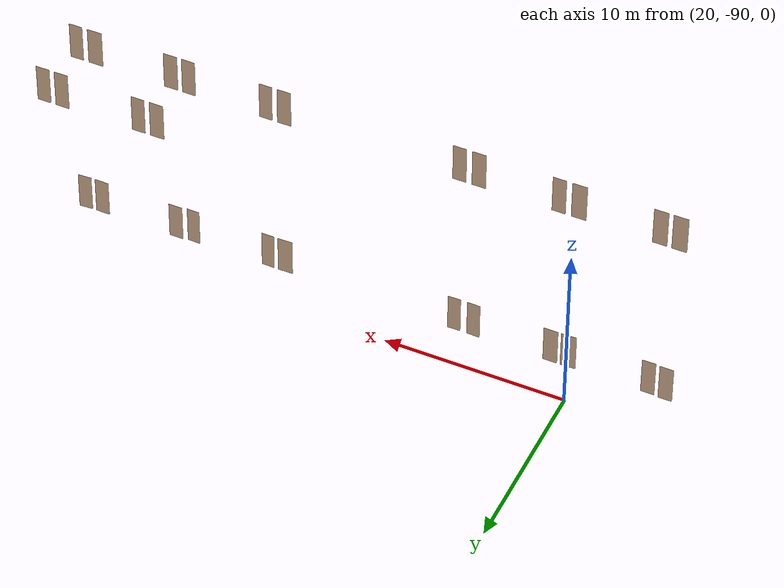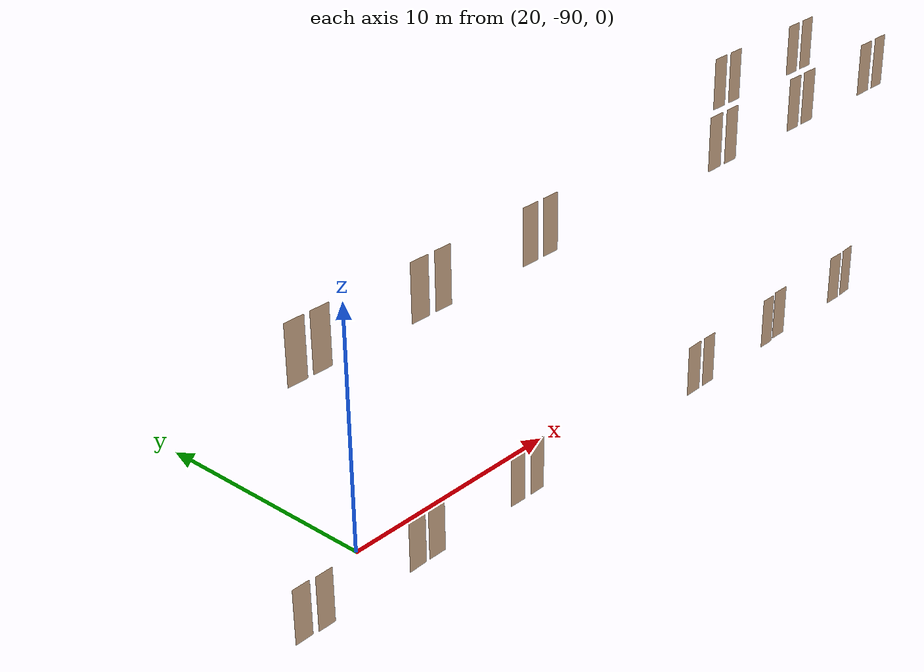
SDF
<sdf version="1.7">
 <world name="sim_world">
  <model name="part3_1">
   <pose>48.504453240539036 -92.27346916209461 0.0 0 0 -3.0840633506619977</pose>
   <link name="right">
    <pose>0 0 1.11 0 0 0</pose>
    <visual name="right_visual">
     <geometry><box><size>0.7421106349888931 0.03 2.2</size></box></geometry>
     <material>
      <ambient>0.5 0.25 0 0.6</ambient>
      <diffuse>0.5 0.25 0 0.6</diffuse>
      <pbr><metal><metalness>0.0</metalness></metal></pbr>
     </material>
    </visual>
    <collision name="right_collision">
     <geometry><box><size>0.7421106349888931 0.03 2.2</size></box></geometry>
     <surface><contact><collide_bitmask>0x02</collide_bitmask></contact></surface>
    </collision>
    <inertial>
     <mass>50.0</mass>
     <inertia><ixx>20.17041666666667</ixx><iyy>22.461367477348414</iyy><izz>2.2984508106817425</izz></inertia>
    </inertial>
   </link>
   <joint name="right_joint" type="revolute">
    <parent>world</parent>
    <child>right</child>
    <axis><xyz>0 0 -1</xyz><limit><lower>0</lower><upper>1.57</upper></limit></axis>
    <pose>0.37605531749444654 0 0 0 0 0</pose>
   </joint>
   <plugin name="register_component" filename="libregister_component.so">
    <component name="Door">
     <v_max_door>0.5</v_max_door>
     <a_max_door>0.3</a_max_door>
     <a_nom_door>0.15</a_nom_door>
     <dx_min_door>0.01</dx_min_door>
     <f_max_door>500.0</f_max_door>
     <ros_interface>true</ros_interface>
     <door name="part3_1" type="SwingDoor" left_joint_name="empty_joint" right_joint_name="right_joint"/>
    </component>
   </plugin>
  </model>
  <model name="part3_4">
   <pose>47.5148352956073 -92.29600606485037 0.0 0 0 3.1241688514080947</pose>
   <link name="right">
    <pose>0 0 1.11 0 0 0</pose>
    <visual name="right_visual">
     <geometry><box><size>0.7802032618314758 0.03 2.2</size></box></geometry>
     <material>
      <ambient>0.5 0.25 0 0.6</ambient>
      <diffuse>0.5 0.25 0 0.6</diffuse>
      <pbr><metal><metalness>0.0</metalness></metal></pbr>
     </material>
    </visual>
    <collision name="right_collision">
     <geometry><box><size>0.7802032618314758 0.03 2.2</size></box></geometry>
     <surface><contact><collide_bitmask>0x02</collide_bitmask></contact></surface>
    </collision>
    <inertial>
     <mass>50.0</mass>
     <inertia><ixx>20.17041666666667</ixx><iyy>22.702988040718648</iyy><izz>2.5400713740519767</izz></inertia>
    </inertial>
   </link>
   <joint name="right_joint" type="revolute">
    <parent>world</parent>
    <child>right</child>
    <axis><xyz>0 0 1</xyz><limit><lower>0</lower><upper>1.57</upper></limit></axis>
    <pose>0.3951016309157379 0 0 0 0 0</pose>
   </joint>
   <plugin name="register_component" filename="libregister_component.so">
    <component name="Door">
     <v_max_door>0.5</v_max_door>
     <a_max_door>0.3</a_max_door>
     <a_nom_door>0.15</a_nom_door>
     <dx_min_door>0.01</dx_min_door>
     <f_max_door>500.0</f_max_door>
     <ros_interface>true</ros_interface>
     <door name="part3_4" type="SwingDoor" left_joint_name="empty_joint" right_joint_name="right_joint"/>
    </component>
   </plugin>
  </model>
  <model name="part3_6">
   <pose>43.162252537892115 -92.28403559175973 0.0 0 0 3.1286053066451407</pose>
   <link name="right">
    <pose>0 0 1.11 0 0 0</pose>
    <visual name="right_visual">
     <geometry><box><size>0.7733457861193949 0.03 2.2</size></box></geometry>
     <material>
      <ambient>0.5 0.25 0 0.6</ambient>
      <diffuse>0.5 0.25 0 0.6</diffuse>
      <pbr><metal><metalness>0.0</metalness></metal></pbr>
     </material>
    </visual>
    <collision name="right_collision">
     <geometry><box><size>0.7733457861193949 0.03 2.2</size></box></geometry>
     <surface><contact><collide_bitmask>0x02</collide_bitmask></contact></surface>
    </collision>
    <inertial>
     <mass>50.0</mass>
     <inertia><ixx>20.17041666666667</ixx><iyy>22.658598770452606</iyy><izz>2.495682103785937</izz></inertia>
    </inertial>
   </link>
   <joint name="right_joint" type="revolute">
    <parent>world</parent>
    <child>right</child>
    <axis><xyz>0 0 -1</xyz><limit><lower>0</lower><upper>1.57</upper></limit></axis>
    <pose>0.39167289305969744 0 0 0 0 0</pose>
   </joint>
   <plugin name="register_component" filename="libregister_component.so">
    <component name="Door">
     <v_max_door>0.5</v_max_door>
     <a_max_door>0.3</a_max_door>
     <a_nom_door>0.15</a_nom_door>
     <dx_min_door>0.01</dx_min_door>
     <f_max_door>500.0</f_max_door>
     <ros_interface>true</ros_interface>
     <door name="part3_6" type="SwingDoor" left_joint_name="empty_joint" right_joint_name="right_joint"/>
    </component>
   </plugin>
  </model>
  <model name="part3_7">
   <pose>42.159821693814436 -92.35573006061897 0.0 0 0 3.121794162050716</pose>
   <link name="right">
    <pose>0 0 1.11 0 0 0</pose>
    <visual name="right_visual">
     <geometry><box><size>0.6951605541301751 0.03 2.2</size></box></geometry>
     <material>
      <ambient>0.5 0.25 0 0.6</ambient>
      <diffuse>0.5 0.25 0 0.6</diffuse>
      <pbr><metal><metalness>0.0</metalness></metal></pbr>
     </material>
    </visual>
    <collision name="right_collision">
     <geometry><box><size>0.6951605541301751 0.03 2.2</size></box></geometry>
     <surface><contact><collide_bitmask>0x02</collide_bitmask></contact></surface>
    </collision>
    <inertial>
     <mass>50.0</mass>
     <inertia><ixx>20.17041666666667</ixx><iyy>22.180200816744055</iyy><izz>2.017284150077384</izz></inertia>
    </inertial>
   </link>
   <joint name="right_joint" type="revolute">
    <parent>world</parent>
    <child>right</child>
    <axis><xyz>0 0 1</xyz><limit><lower>0</lower><upper>1.57</upper></limit></axis>
    <pose>0.35258027706508754 0 0 0 0 0</pose>
   </joint>
   <plugin name="register_component" filename="libregister_component.so">
    <component name="Door">
     <v_max_door>0.5</v_max_door>
     <a_max_door>0.3</a_max_door>
     <a_nom_door>0.15</a_nom_door>
     <dx_min_door>0.01</dx_min_door>
     <f_max_door>500.0</f_max_door>
     <ros_interface>true</ros_interface>
     <door name="part3_7" type="SwingDoor" left_joint_name="empty_joint" right_joint_name="right_joint"/>
    </component>
   </plugin>
  </model>
  <model name="part3_9">
   <pose>37.83918694135859 -92.38632216108452 0.0 0 0 3.137052876759596</pose>
   <link name="right">
    <pose>0 0 1.11 0 0 0</pose>
    <visual name="right_visual">
     <geometry><box><size>0.7004532943656328 0.03 2.2</size></box></geometry>
     <material>
      <ambient>0.5 0.25 0 0.6</ambient>
      <diffuse>0.5 0.25 0 0.6</diffuse>
      <pbr><metal><metalness>0.0</metalness></metal></pbr>
     </material>
    </visual>
    <collision name="right_collision">
     <geometry><box><size>0.7004532943656328 0.03 2.2</size></box></geometry>
     <surface><contact><collide_bitmask>0x02</collide_bitmask></contact></surface>
    </collision>
    <inertial>
     <mass>50.0</mass>
     <inertia><ixx>20.17041666666667</ixx><iyy>22.210978406615286</iyy><izz>2.048061739948616</izz></inertia>
    </inertial>
   </link>
   <joint name="right_joint" type="revolute">
    <parent>world</parent>
    <child>right</child>
    <axis><xyz>0 0 -1</xyz><limit><lower>0</lower><upper>1.57</upper></limit></axis>
    <pose>0.3552266471828164 0 0 0 0 0</pose>
   </joint>
   <plugin name="register_component" filename="libregister_component.so">
    <component name="Door">
     <v_max_door>0.5</v_max_door>
     <a_max_door>0.3</a_max_door>
     <a_nom_door>0.15</a_nom_door>
     <dx_min_door>0.01</dx_min_door>
     <f_max_door>500.0</f_max_door>
     <ros_interface>true</ros_interface>
     <door name="part3_9" type="SwingDoor" left_joint_name="empty_joint" right_joint_name="right_joint"/>
    </component>
   </plugin>
  </model>
  <model name="part3_10_end">
   <pose>36.84664858610179 -92.38692389398116 0.0 0 0 -3.1164861377216235</pose>
   <link name="right">
    <pose>0 0 1.11 0 0 0</pose>
    <visual name="right_visual">
     <geometry><box><size>0.8120015453154469 0.03 2.2</size></box></geometry>
     <material>
      <ambient>0.5 0.25 0 0.6</ambient>
      <diffuse>0.5 0.25 0 0.6</diffuse>
      <pbr><metal><metalness>0.0</metalness></metal></pbr>
     </material>
    </visual>
    <collision name="right_collision">
     <geometry><box><size>0.8120015453154469 0.03 2.2</size></box></geometry>
     <surface><contact><collide_bitmask>0x02</collide_bitmask></contact></surface>
    </collision>
    <inertial>
     <mass>50.0</mass>
     <inertia><ixx>20.17041666666667</ixx><iyy>22.913943789977814</iyy><izz>2.751027123311141</izz></inertia>
    </inertial>
   </link>
   <joint name="right_joint" type="revolute">
    <parent>world</parent>
    <child>right</child>
    <axis><xyz>0 0 1</xyz><limit><lower>0</lower><upper>1.57</upper></limit></axis>
    <pose>0.41100077265772345 0 0 0 0 0</pose>
   </joint>
   <plugin name="register_component" filename="libregister_component.so">
    <component name="Door">
     <v_max_door>0.5</v_max_door>
     <a_max_door>0.3</a_max_door>
     <a_nom_door>0.15</a_nom_door>
     <dx_min_door>0.01</dx_min_door>
     <f_max_door>500.0</f_max_door>
     <ros_interface>true</ros_interface>
     <door name="part3_10_end" type="SwingDoor" left_joint_name="empty_joint" right_joint_name="right_joint"/>
    </component>
   </plugin>
  </model>
  <model name="part4_6">
   <pose>27.17457853681181 -92.28621787639824 0.0 0 0 -3.12595904261172</pose>
   <link name="right">
    <pose>0 0 1.11 0 0 0</pose>
    <visual name="right_visual">
     <geometry><box><size>0.7002920795516806 0.03 2.2</size></box></geometry>
     <material>
      <ambient>0.5 0.25 0 0.6</ambient>
      <diffuse>0.5 0.25 0 0.6</diffuse>
      <pbr><metal><metalness>0.0</metalness></metal></pbr>
     </material>
    </visual>
    <collision name="right_collision">
     <geometry><box><size>0.7002920795516806 0.03 2.2</size></box></geometry>
     <surface><contact><collide_bitmask>0x02</collide_bitmask></contact></surface>
    </collision>
    <inertial>
     <mass>50.0</mass>
     <inertia><ixx>20.17041666666667</ixx><iyy>22.21003748617841</iyy><izz>2.047120819511739</izz></inertia>
    </inertial>
   </link>
   <joint name="right_joint" type="revolute">
    <parent>world</parent>
    <child>right</child>
    <axis><xyz>0 0 -1</xyz><limit><lower>0</lower><upper>1.57</upper></limit></axis>
    <pose>0.3551460397758403 0 0 0 0 0</pose>
   </joint>
   <plugin name="register_component" filename="libregister_component.so">
    <component name="Door">
     <v_max_door>0.5</v_max_door>
     <a_max_door>0.3</a_max_door>
     <a_nom_door>0.15</a_nom_door>
     <dx_min_door>0.01</dx_min_door>
     <f_max_door>500.0</f_max_door>
     <ros_interface>true</ros_interface>
     <door name="part4_6" type="SwingDoor" left_joint_name="empty_joint" right_joint_name="right_joint"/>
    </component>
   </plugin>
  </model>
  <model name="part4_5">
   <pose>26.091162467950667 -92.28202981543757 0.0 0 0 3.1147662105068084</pose>
   <link name="right">
    <pose>0 0 1.11 0 0 0</pose>
    <visual name="right_visual">
     <geometry><box><size>0.7162400117105202 0.03 2.2</size></box></geometry>
     <material>
      <ambient>0.5 0.25 0 0.6</ambient>
      <diffuse>0.5 0.25 0 0.6</diffuse>
      <pbr><metal><metalness>0.0</metalness></metal></pbr>
     </material>
    </visual>
    <collision name="right_collision">
     <geometry><box><size>0.7162400117105202 0.03 2.2</size></box></geometry>
     <surface><contact><collide_bitmask>0x02</collide_bitmask></contact></surface>
    </collision>
    <inertial>
     <mass>50.0</mass>
     <inertia><ixx>20.17041666666667</ixx><iyy>22.30416564322953</iyy><izz>2.141248976562859</izz></inertia>
    </inertial>
   </link>
   <joint name="right_joint" type="revolute">
    <parent>world</parent>
    <child>right</child>
    <axis><xyz>0 0 1</xyz><limit><lower>0</lower><upper>1.57</upper></limit></axis>
    <pose>0.3631200058552601 0 0 0 0 0</pose>
   </joint>
   <plugin name="register_component" filename="libregister_component.so">
    <component name="Door">
     <v_max_door>0.5</v_max_door>
     <a_max_door>0.3</a_max_door>
     <a_nom_door>0.15</a_nom_door>
     <dx_min_door>0.01</dx_min_door>
     <f_max_door>500.0</f_max_door>
     <ros_interface>true</ros_interface>
     <door name="part4_5" type="SwingDoor" left_joint_name="empty_joint" right_joint_name="right_joint"/>
    </component>
   </plugin>
  </model>
  <model name="part4_4">
   <pose>21.79289613303953 -92.27025189687387 0.0 0 0 3.1364429718043936</pose>
   <link name="right">
    <pose>0 0 1.11 0 0 0</pose>
    <visual name="right_visual">
     <geometry><box><size>0.7814577387012437 0.03 2.2</size></box></geometry>
     <material>
      <ambient>0.5 0.25 0 0.6</ambient>
      <diffuse>0.5 0.25 0 0.6</diffuse>
      <pbr><metal><metalness>0.0</metalness></metal></pbr>
     </material>
    </visual>
    <collision name="right_collision">
     <geometry><box><size>0.7814577387012437 0.03 2.2</size></box></geometry>
     <surface><contact><collide_bitmask>0x02</collide_bitmask></contact></surface>
    </collision>
    <inertial>
     <mass>50.0</mass>
     <inertia><ixx>20.17041666666667</ixx><iyy>22.71115082240026</iyy><izz>2.548234155733589</izz></inertia>
    </inertial>
   </link>
   <joint name="right_joint" type="revolute">
    <parent>world</parent>
    <child>right</child>
    <axis><xyz>0 0 -1</xyz><limit><lower>0</lower><upper>1.57</upper></limit></axis>
    <pose>0.39572886935062185 0 0 0 0 0</pose>
   </joint>
   <plugin name="register_component" filename="libregister_component.so">
    <component name="Door">
     <v_max_door>0.5</v_max_door>
     <a_max_door>0.3</a_max_door>
     <a_nom_door>0.15</a_nom_door>
     <dx_min_door>0.01</dx_min_door>
     <f_max_door>500.0</f_max_door>
     <ros_interface>true</ros_interface>
     <door name="part4_4" type="SwingDoor" left_joint_name="empty_joint" right_joint_name="right_joint"/>
    </component>
   </plugin>
  </model>
  <model name="part4_2">
   <pose>16.429426178272443 -92.29821241880475 0.0 0 0 -3.135646432111975</pose>
   <link name="right">
    <pose>0 0 1.11 0 0 0</pose>
    <visual name="right_visual">
     <geometry><box><size>0.7429015106224636 0.03 2.2</size></box></geometry>
     <material>
      <ambient>0.5 0.25 0 0.6</ambient>
      <diffuse>0.5 0.25 0 0.6</diffuse>
      <pbr><metal><metalness>0.0</metalness></metal></pbr>
     </material>
    </visual>
    <collision name="right_collision">
     <geometry><box><size>0.7429015106224636 0.03 2.2</size></box></geometry>
     <surface><contact><collide_bitmask>0x02</collide_bitmask></contact></surface>
    </collision>
    <inertial>
     <mass>50.0</mass>
     <inertia><ixx>20.17041666666667</ixx><iyy>22.466261060354746</iyy><izz>2.3033443936880764</izz></inertia>
    </inertial>
   </link>
   <joint name="right_joint" type="revolute">
    <parent>world</parent>
    <child>right</child>
    <axis><xyz>0 0 -1</xyz><limit><lower>0</lower><upper>1.57</upper></limit></axis>
    <pose>0.3764507553112318 0 0 0 0 0</pose>
   </joint>
   <plugin name="register_component" filename="libregister_component.so">
    <component name="Door">
     <v_max_door>0.5</v_max_door>
     <a_max_door>0.3</a_max_door>
     <a_nom_door>0.15</a_nom_door>
     <dx_min_door>0.01</dx_min_door>
     <f_max_door>500.0</f_max_door>
     <ros_interface>true</ros_interface>
     <door name="part4_2" type="SwingDoor" left_joint_name="empty_joint" right_joint_name="right_joint"/>
    </component>
   </plugin>
  </model>
  <model name="part4_1">
   <pose>15.451168950429413 -92.25228014102731 0.0 0 0 -3.133526279514801</pose>
   <link name="right">
    <pose>0 0 1.11 0 0 0</pose>
    <visual name="right_visual">
     <geometry><box><size>0.7538886599244344 0.03 2.2</size></box></geometry>
     <material>
      <ambient>0.5 0.25 0 0.6</ambient>
      <diffuse>0.5 0.25 0 0.6</diffuse>
      <pbr><metal><metalness>0.0</metalness></metal></pbr>
     </material>
    </visual>
    <collision name="right_collision">
     <geometry><box><size>0.7538886599244344 0.03 2.2</size></box></geometry>
     <surface><contact><collide_bitmask>0x02</collide_bitmask></contact></surface>
    </collision>
    <inertial>
     <mass>50.0</mass>
     <inertia><ixx>20.17041666666667</ixx><iyy>22.534783798177752</iyy><izz>2.3718671315110815</izz></inertia>
    </inertial>
   </link>
   <joint name="right_joint" type="revolute">
    <parent>world</parent>
    <child>right</child>
    <axis><xyz>0 0 1</xyz><limit><lower>0</lower><upper>1.57</upper></limit></axis>
    <pose>0.3819443299622172 0 0 0 0 0</pose>
   </joint>
   <plugin name="register_component" filename="libregister_component.so">
    <component name="Door">
     <v_max_door>0.5</v_max_door>
     <a_max_door>0.3</a_max_door>
     <a_nom_door>0.15</a_nom_door>
     <dx_min_door>0.01</dx_min_door>
     <f_max_door>500.0</f_max_door>
     <ros_interface>true</ros_interface>
     <door name="part4_1" type="SwingDoor" left_joint_name="empty_joint" right_joint_name="right_joint"/>
    </component>
   </plugin>
  </model>
  <model name="part4_3">
   <pose>20.81063537565747 -92.2820940002799 0.0 0 0 -3.1083344110460236</pose>
   <link name="right">
    <pose>0 0 1.11 0 0 0</pose>
    <visual name="right_visual">
     <geometry><box><size>0.8248325236321878 0.03 2.2</size></box></geometry>
     <material>
      <ambient>0.5 0.25 0 0.6</ambient>
      <diffuse>0.5 0.25 0 0.6</diffuse>
      <pbr><metal><metalness>0.0</metalness></metal></pbr>
     </material>
    </visual>
    <collision name="right_collision">
     <geometry><box><size>0.8248325236321878 0.03 2.2</size></box></geometry>
     <surface><contact><collide_bitmask>0x02</collide_bitmask></contact></surface>
    </collision>
    <inertial>
     <mass>50.0</mass>
     <inertia><ixx>20.17041666666667</ixx><iyy>23.001452883506023</iyy><izz>2.838536216839349</izz></inertia>
    </inertial>
   </link>
   <joint name="right_joint" type="revolute">
    <parent>world</parent>
    <child>right</child>
    <axis><xyz>0 0 1</xyz><limit><lower>0</lower><upper>1.57</upper></limit></axis>
    <pose>0.4174162618160939 0 0 0 0 0</pose>
   </joint>
   <plugin name="register_component" filename="libregister_component.so">
    <component name="Door">
     <v_max_door>0.5</v_max_door>
     <a_max_door>0.3</a_max_door>
     <a_nom_door>0.15</a_nom_door>
     <dx_min_door>0.01</dx_min_door>
     <f_max_door>500.0</f_max_door>
     <ros_interface>true</ros_interface>
     <door name="part4_3" type="SwingDoor" left_joint_name="empty_joint" right_joint_name="right_joint"/>
    </component>
   </plugin>
  </model>
  <model name="L3_part1_7">
   <pose>42.326793936923764 -89.17011710650151 10.0 0 0 -3.1397482828974224</pose>
   <link name="right">
    <pose>0 0 1.11 0 0 0</pose>
    <visual name="right_visual">
     <geometry><box><size>0.7638350684312938 0.03 2.2</size></box></geometry>
     <material>
      <ambient>0.5 0.25 0 0.6</ambient>
      <diffuse>0.5 0.25 0 0.6</diffuse>
      <pbr><metal><metalness>0.0</metalness></metal></pbr>
     </material>
    </visual>
    <collision name="right_collision">
     <geometry><box><size>0.7638350684312938 0.03 2.2</size></box></geometry>
     <surface><contact><collide_bitmask>0x02</collide_bitmask></contact></surface>
    </collision>
    <inertial>
     <mass>50.0</mass>
     <inertia><ixx>20.17041666666667</ixx><iyy>22.597683382356003</iyy><izz>2.4347667156893302</izz></inertia>
    </inertial>
   </link>
   <joint name="right_joint" type="revolute">
    <parent>world</parent>
    <child>right</child>
    <axis><xyz>0 0 -1</xyz><limit><lower>0</lower><upper>1.57</upper></limit></axis>
    <pose>0.3869175342156469 0 0 0 0 0</pose>
   </joint>
   <plugin name="register_component" filename="libregister_component.so">
    <component name="Door">
     <v_max_door>0.5</v_max_door>
     <a_max_door>0.3</a_max_door>
     <a_nom_door>0.15</a_nom_door>
     <dx_min_door>0.01</dx_min_door>
     <f_max_door>500.0</f_max_door>
     <ros_interface>true</ros_interface>
     <door name="L3_part1_7" type="SwingDoor" left_joint_name="empty_joint" right_joint_name="right_joint"/>
    </component>
   </plugin>
  </model>
  <model name="L3_part1_5">
   <pose>43.369855059397736 -89.16819331295545 10.0 0 0 -3.1397482828974304</pose>
   <link name="right">
    <pose>0 0 1.11 0 0 0</pose>
    <visual name="right_visual">
     <geometry><box><size>0.7266494846776324 0.03 2.2</size></box></geometry>
     <material>
      <ambient>0.5 0.25 0 0.6</ambient>
      <diffuse>0.5 0.25 0 0.6</diffuse>
      <pbr><metal><metalness>0.0</metalness></metal></pbr>
     </material>
    </visual>
    <collision name="right_collision">
     <geometry><box><size>0.7266494846776324 0.03 2.2</size></box></geometry>
     <surface><contact><collide_bitmask>0x02</collide_bitmask></contact></surface>
    </collision>
    <inertial>
     <mass>50.0</mass>
     <inertia><ixx>20.17041666666667</ixx><iyy>22.36674780659279</iyy><izz>2.2038311399261197</izz></inertia>
    </inertial>
   </link>
   <joint name="right_joint" type="revolute">
    <parent>world</parent>
    <child>right</child>
    <axis><xyz>0 0 1</xyz><limit><lower>0</lower><upper>1.57</upper></limit></axis>
    <pose>0.3683247423388162 0 0 0 0 0</pose>
   </joint>
   <plugin name="register_component" filename="libregister_component.so">
    <component name="Door">
     <v_max_door>0.5</v_max_door>
     <a_max_door>0.3</a_max_door>
     <a_nom_door>0.15</a_nom_door>
     <dx_min_door>0.01</dx_min_door>
     <f_max_door>500.0</f_max_door>
     <ros_interface>true</ros_interface>
     <door name="L3_part1_5" type="SwingDoor" left_joint_name="empty_joint" right_joint_name="right_joint"/>
    </component>
   </plugin>
  </model>
  <model name="L3_part1_3">
   <pose>47.7197852502798 -89.16017042010034 10.0 0 0 -3.1397482828974237</pose>
   <link name="right">
    <pose>0 0 1.11 0 0 0</pose>
    <visual name="right_visual">
     <geometry><box><size>0.7544780701725442 0.03 2.2</size></box></geometry>
     <material>
      <ambient>0.5 0.25 0 0.6</ambient>
      <diffuse>0.5 0.25 0 0.6</diffuse>
      <pbr><metal><metalness>0.0</metalness></metal></pbr>
     </material>
    </visual>
    <collision name="right_collision">
     <geometry><box><size>0.7544780701725442 0.03 2.2</size></box></geometry>
     <surface><contact><collide_bitmask>0x02</collide_bitmask></contact></surface>
    </collision>
    <inertial>
     <mass>50.0</mass>
     <inertia><ixx>20.17041666666667</ixx><iyy>22.538488159880362</iyy><izz>2.375571493213694</izz></inertia>
    </inertial>
   </link>
   <joint name="right_joint" type="revolute">
    <parent>world</parent>
    <child>right</child>
    <axis><xyz>0 0 -1</xyz><limit><lower>0</lower><upper>1.57</upper></limit></axis>
    <pose>0.3822390350862721 0 0 0 0 0</pose>
   </joint>
   <plugin name="register_component" filename="libregister_component.so">
    <component name="Door">
     <v_max_door>0.5</v_max_door>
     <a_max_door>0.3</a_max_door>
     <a_nom_door>0.15</a_nom_door>
     <dx_min_door>0.01</dx_min_door>
     <f_max_door>500.0</f_max_door>
     <ros_interface>true</ros_interface>
     <door name="L3_part1_3" type="SwingDoor" left_joint_name="empty_joint" right_joint_name="right_joint"/>
    </component>
   </plugin>
  </model>
  <model name="L3_part1_2">
   <pose>48.75341666774919 -89.15826401844558 10.0 0 0 -3.1397482828974046</pose>
   <link name="right">
    <pose>0 0 1.11 0 0 0</pose>
    <visual name="right_visual">
     <geometry><box><size>0.7430363520944957 0.03 2.2</size></box></geometry>
     <material>
      <ambient>0.5 0.25 0 0.6</ambient>
      <diffuse>0.5 0.25 0 0.6</diffuse>
      <pbr><metal><metalness>0.0</metalness></metal></pbr>
     </material>
    </visual>
    <collision name="right_collision">
     <geometry><box><size>0.7430363520944957 0.03 2.2</size></box></geometry>
     <surface><contact><collide_bitmask>0x02</collide_bitmask></contact></surface>
    </collision>
    <inertial>
     <mass>50.0</mass>
     <inertia><ixx>20.17041666666667</ixx><iyy>22.467095918891236</iyy><izz>2.3041792522245643</izz></inertia>
    </inertial>
   </link>
   <joint name="right_joint" type="revolute">
    <parent>world</parent>
    <child>right</child>
    <axis><xyz>0 0 1</xyz><limit><lower>0</lower><upper>1.57</upper></limit></axis>
    <pose>0.37651817604724785 0 0 0 0 0</pose>
   </joint>
   <plugin name="register_component" filename="libregister_component.so">
    <component name="Door">
     <v_max_door>0.5</v_max_door>
     <a_max_door>0.3</a_max_door>
     <a_nom_door>0.15</a_nom_door>
     <dx_min_door>0.01</dx_min_door>
     <f_max_door>500.0</f_max_door>
     <ros_interface>true</ros_interface>
     <door name="L3_part1_2" type="SwingDoor" left_joint_name="empty_joint" right_joint_name="right_joint"/>
    </component>
   </plugin>
  </model>
  <model name="L3_part1_1">
   <pose>48.78427791606832 -92.75209241313986 10.0 0 0 -3.1397482828974086</pose>
   <link name="right">
    <pose>0 0 1.11 0 0 0</pose>
    <visual name="right_visual">
     <geometry><box><size>0.7333238202231596 0.03 2.2</size></box></geometry>
     <material>
      <ambient>0.5 0.25 0 0.6</ambient>
      <diffuse>0.5 0.25 0 0.6</diffuse>
      <pbr><metal><metalness>0.0</metalness></metal></pbr>
     </material>
    </visual>
    <collision name="right_collision">
     <geometry><box><size>0.7333238202231596 0.03 2.2</size></box></geometry>
     <surface><contact><collide_bitmask>0x02</collide_bitmask></contact></surface>
    </collision>
    <inertial>
     <mass>50.0</mass>
     <inertia><ixx>20.17041666666667</ixx><iyy>22.407349272111208</iyy><izz>2.2444326054445374</izz></inertia>
    </inertial>
   </link>
   <joint name="right_joint" type="revolute">
    <parent>world</parent>
    <child>right</child>
    <axis><xyz>0 0 -1</xyz><limit><lower>0</lower><upper>1.57</upper></limit></axis>
    <pose>0.3716619101115798 0 0 0 0 0</pose>
   </joint>
   <plugin name="register_component" filename="libregister_component.so">
    <component name="Door">
     <v_max_door>0.5</v_max_door>
     <a_max_door>0.3</a_max_door>
     <a_nom_door>0.15</a_nom_door>
     <dx_min_door>0.01</dx_min_door>
     <f_max_door>500.0</f_max_door>
     <ros_interface>true</ros_interface>
     <door name="L3_part1_1" type="SwingDoor" left_joint_name="empty_joint" right_joint_name="right_joint"/>
    </component>
   </plugin>
  </model>
  <model name="L3_part1_4">
   <pose>47.70147789966756 -92.75408950002031 10.0 0 0 -3.139748282897409</pose>
   <link name="right">
    <pose>0 0 1.11 0 0 0</pose>
    <visual name="right_visual">
     <geometry><box><size>0.8111371995251554 0.03 2.2</size></box></geometry>
     <material>
      <ambient>0.5 0.25 0 0.6</ambient>
      <diffuse>0.5 0.25 0 0.6</diffuse>
      <pbr><metal><metalness>0.0</metalness></metal></pbr>
     </material>
    </visual>
    <collision name="right_collision">
     <geometry><box><size>0.8111371995251554 0.03 2.2</size></box></geometry>
     <surface><contact><collide_bitmask>0x02</collide_bitmask></contact></surface>
    </collision>
    <inertial>
     <mass>50.0</mass>
     <inertia><ixx>20.17041666666667</ixx><iyy>22.90809815188964</iyy><izz>2.745181485222966</izz></inertia>
    </inertial>
   </link>
   <joint name="right_joint" type="revolute">
    <parent>world</parent>
    <child>right</child>
    <axis><xyz>0 0 1</xyz><limit><lower>0</lower><upper>1.57</upper></limit></axis>
    <pose>0.4105685997625777 0 0 0 0 0</pose>
   </joint>
   <plugin name="register_component" filename="libregister_component.so">
    <component name="Door">
     <v_max_door>0.5</v_max_door>
     <a_max_door>0.3</a_max_door>
     <a_nom_door>0.15</a_nom_door>
     <dx_min_door>0.01</dx_min_door>
     <f_max_door>500.0</f_max_door>
     <ros_interface>true</ros_interface>
     <door name="L3_part1_4" type="SwingDoor" left_joint_name="empty_joint" right_joint_name="right_joint"/>
    </component>
   </plugin>
  </model>
  <model name="L3_part1_8">
   <pose>42.35903691579627 -92.76394295276957 10.0 0 0 -3.1397482828974286</pose>
   <link name="right">
    <pose>0 0 1.11 0 0 0</pose>
    <visual name="right_visual">
     <geometry><box><size>0.7378487934743584 0.03 2.2</size></box></geometry>
     <material>
      <ambient>0.5 0.25 0 0.6</ambient>
      <diffuse>0.5 0.25 0 0.6</diffuse>
      <pbr><metal><metalness>0.0</metalness></metal></pbr>
     </material>
    </visual>
    <collision name="right_collision">
     <geometry><box><size>0.7378487934743584 0.03 2.2</size></box></geometry>
     <surface><contact><collide_bitmask>0x02</collide_bitmask></contact></surface>
    </collision>
    <inertial>
     <mass>50.0</mass>
     <inertia><ixx>20.17041666666667</ixx><iyy>22.435086841798196</iyy><izz>2.2721701751315266</izz></inertia>
    </inertial>
   </link>
   <joint name="right_joint" type="revolute">
    <parent>world</parent>
    <child>right</child>
    <axis><xyz>0 0 1</xyz><limit><lower>0</lower><upper>1.57</upper></limit></axis>
    <pose>0.3739243967371792 0 0 0 0 0</pose>
   </joint>
   <plugin name="register_component" filename="libregister_component.so">
    <component name="Door">
     <v_max_door>0.5</v_max_door>
     <a_max_door>0.3</a_max_door>
     <a_nom_door>0.15</a_nom_door>
     <dx_min_door>0.01</dx_min_door>
     <f_max_door>500.0</f_max_door>
     <ros_interface>true</ros_interface>
     <door name="L3_part1_8" type="SwingDoor" left_joint_name="empty_joint" right_joint_name="right_joint"/>
    </component>
   </plugin>
  </model>
  <model name="L3_part1_6">
   <pose>43.37770362575195 -92.76206415161406 10.0 0 0 -3.139748282897425</pose>
   <link name="right">
    <pose>0 0 1.11 0 0 0</pose>
    <visual name="right_visual">
     <geometry><box><size>0.7685539691075521 0.03 2.2</size></box></geometry>
     <material>
      <ambient>0.5 0.25 0 0.6</ambient>
      <diffuse>0.5 0.25 0 0.6</diffuse>
      <pbr><metal><metalness>0.0</metalness></metal></pbr>
     </material>
    </visual>
    <collision name="right_collision">
     <geometry><box><size>0.7685539691075521 0.03 2.2</size></box></geometry>
     <surface><contact><collide_bitmask>0x02</collide_bitmask></contact></surface>
    </collision>
    <inertial>
     <mass>50.0</mass>
     <inertia><ixx>20.17041666666667</ixx><iyy>22.627813347629058</iyy><izz>2.4648966809623847</izz></inertia>
    </inertial>
   </link>
   <joint name="right_joint" type="revolute">
    <parent>world</parent>
    <child>right</child>
    <axis><xyz>0 0 -1</xyz><limit><lower>0</lower><upper>1.57</upper></limit></axis>
    <pose>0.3892769845537761 0 0 0 0 0</pose>
   </joint>
   <plugin name="register_component" filename="libregister_component.so">
    <component name="Door">
     <v_max_door>0.5</v_max_door>
     <a_max_door>0.3</a_max_door>
     <a_nom_door>0.15</a_nom_door>
     <dx_min_door>0.01</dx_min_door>
     <f_max_door>500.0</f_max_door>
     <ros_interface>true</ros_interface>
     <door name="L3_part1_6" type="SwingDoor" left_joint_name="empty_joint" right_joint_name="right_joint"/>
    </component>
   </plugin>
  </model>
  <model name="L3_part1_9">
   <pose>38.0023758386513 -92.77197825988812 10.0 0 0 -3.1397482828974024</pose>
   <link name="right">
    <pose>0 0 1.11 0 0 0</pose>
    <visual name="right_visual">
     <geometry><box><size>0.7055760378220147 0.03 2.2</size></box></geometry>
     <material>
      <ambient>0.5 0.25 0 0.6</ambient>
      <diffuse>0.5 0.25 0 0.6</diffuse>
      <pbr><metal><metalness>0.0</metalness></metal></pbr>
     </material>
    </visual>
    <collision name="right_collision">
     <geometry><box><size>0.7055760378220147 0.03 2.2</size></box></geometry>
     <surface><contact><collide_bitmask>0x02</collide_bitmask></contact></surface>
    </collision>
    <inertial>
     <mass>50.0</mass>
     <inertia><ixx>20.17041666666667</ixx><iyy>22.240989771452558</iyy><izz>2.0780731047858882</izz></inertia>
    </inertial>
   </link>
   <joint name="right_joint" type="revolute">
    <parent>world</parent>
    <child>right</child>
    <axis><xyz>0 0 -1</xyz><limit><lower>0</lower><upper>1.57</upper></limit></axis>
    <pose>0.35778801891100737 0 0 0 0 0</pose>
   </joint>
   <plugin name="register_component" filename="libregister_component.so">
    <component name="Door">
     <v_max_door>0.5</v_max_door>
     <a_max_door>0.3</a_max_door>
     <a_nom_door>0.15</a_nom_door>
     <dx_min_door>0.01</dx_min_door>
     <f_max_door>500.0</f_max_door>
     <ros_interface>true</ros_interface>
     <door name="L3_part1_9" type="SwingDoor" left_joint_name="empty_joint" right_joint_name="right_joint"/>
    </component>
   </plugin>
  </model>
  <model name="L3_part1_10">
   <pose>36.972130065052454 -92.77387841715348 10.0 0 0 -3.1397482828974286</pose>
   <link name="right">
    <pose>0 0 1.11 0 0 0</pose>
    <visual name="right_visual">
     <geometry><box><size>0.7543649458412731 0.03 2.2</size></box></geometry>
     <material>
      <ambient>0.5 0.25 0 0.6</ambient>
      <diffuse>0.5 0.25 0 0.6</diffuse>
      <pbr><metal><metalness>0.0</metalness></metal></pbr>
     </material>
    </visual>
    <collision name="right_collision">
     <geometry><box><size>0.7543649458412731 0.03 2.2</size></box></geometry>
     <surface><contact><collide_bitmask>0x02</collide_bitmask></contact></surface>
    </collision>
    <inertial>
     <mass>50.0</mass>
     <inertia><ixx>20.17041666666667</ixx><iyy>22.537776964642116</iyy><izz>2.3748602979754456</izz></inertia>
    </inertial>
   </link>
   <joint name="right_joint" type="revolute">
    <parent>world</parent>
    <child>right</child>
    <axis><xyz>0 0 1</xyz><limit><lower>0</lower><upper>1.57</upper></limit></axis>
    <pose>0.38218247292063656 0 0 0 0 0</pose>
   </joint>
   <plugin name="register_component" filename="libregister_component.so">
    <component name="Door">
     <v_max_door>0.5</v_max_door>
     <a_max_door>0.3</a_max_door>
     <a_nom_door>0.15</a_nom_door>
     <dx_min_door>0.01</dx_min_door>
     <f_max_door>500.0</f_max_door>
     <ros_interface>true</ros_interface>
     <door name="L3_part1_10" type="SwingDoor" left_joint_name="empty_joint" right_joint_name="right_joint"/>
    </component>
   </plugin>
  </model>
  <model name="L3_part1_18_end">
   <pose>15.45078665303226 -92.79539107019028 10.0 0 0 -3.1397482828974166</pose>
   <link name="right">
    <pose>0 0 1.11 0 0 0</pose>
    <visual name="right_visual">
     <geometry><box><size>0.8012145796100094 0.03 2.2</size></box></geometry>
     <material>
      <ambient>0.5 0.25 0 0.6</ambient>
      <diffuse>0.5 0.25 0 0.6</diffuse>
      <pbr><metal><metalness>0.0</metalness></metal></pbr>
     </material>
    </visual>
    <collision name="right_collision">
     <geometry><box><size>0.8012145796100094 0.03 2.2</size></box></geometry>
     <surface><contact><collide_bitmask>0x02</collide_bitmask></contact></surface>
    </collision>
    <inertial>
     <mass>50.0</mass>
     <inertia><ixx>20.17041666666667</ixx><iyy>22.84143667741519</iyy><izz>2.6785200107485174</izz></inertia>
    </inertial>
   </link>
   <joint name="right_joint" type="revolute">
    <parent>world</parent>
    <child>right</child>
    <axis><xyz>0 0 1</xyz><limit><lower>0</lower><upper>1.57</upper></limit></axis>
    <pose>0.4056072898050047 0 0 0 0 0</pose>
   </joint>
   <plugin name="register_component" filename="libregister_component.so">
    <component name="Door">
     <v_max_door>0.5</v_max_door>
     <a_max_door>0.3</a_max_door>
     <a_nom_door>0.15</a_nom_door>
     <dx_min_door>0.01</dx_min_door>
     <f_max_door>500.0</f_max_door>
     <ros_interface>true</ros_interface>
     <door name="L3_part1_18_end" type="SwingDoor" left_joint_name="empty_joint" right_joint_name="right_joint"/>
    </component>
   </plugin>
  </model>
  <model name="L3_part1_17">
   <pose>16.48733505722543 -92.79347928852457 10.0 0 0 -3.139748282897414</pose>
   <link name="right">
    <pose>0 0 1.11 0 0 0</pose>
    <visual name="right_visual">
     <geometry><box><size>0.7711719893457524 0.03 2.2</size></box></geometry>
     <material>
      <ambient>0.5 0.25 0 0.6</ambient>
      <diffuse>0.5 0.25 0 0.6</diffuse>
      <pbr><metal><metalness>0.0</metalness></metal></pbr>
     </material>
    </visual>
    <collision name="right_collision">
     <geometry><box><size>0.7711719893457524 0.03 2.2</size></box></geometry>
     <surface><contact><collide_bitmask>0x02</collide_bitmask></contact></surface>
    </collision>
    <inertial>
     <mass>50.0</mass>
     <inertia><ixx>20.17041666666667</ixx><iyy>22.64460932146453</iyy><izz>2.4816926547978553</izz></inertia>
    </inertial>
   </link>
   <joint name="right_joint" type="revolute">
    <parent>world</parent>
    <child>right</child>
    <axis><xyz>0 0 -1</xyz><limit><lower>0</lower><upper>1.57</upper></limit></axis>
    <pose>0.3905859946728762 0 0 0 0 0</pose>
   </joint>
   <plugin name="register_component" filename="libregister_component.so">
    <component name="Door">
     <v_max_door>0.5</v_max_door>
     <a_max_door>0.3</a_max_door>
     <a_nom_door>0.15</a_nom_door>
     <dx_min_door>0.01</dx_min_door>
     <f_max_door>500.0</f_max_door>
     <ros_interface>true</ros_interface>
     <door name="L3_part1_17" type="SwingDoor" left_joint_name="empty_joint" right_joint_name="right_joint"/>
    </component>
   </plugin>
  </model>
  <model name="L3_part1_16">
   <pose>20.805727854248964 -92.78551456238037 10.0 0 0 -3.1397482828974126</pose>
   <link name="right">
    <pose>0 0 1.11 0 0 0</pose>
    <visual name="right_visual">
     <geometry><box><size>0.7982410257592173 0.03 2.2</size></box></geometry>
     <material>
      <ambient>0.5 0.25 0 0.6</ambient>
      <diffuse>0.5 0.25 0 0.6</diffuse>
      <pbr><metal><metalness>0.0</metalness></metal></pbr>
     </material>
    </visual>
    <collision name="right_collision">
     <geometry><box><size>0.7982410257592173 0.03 2.2</size></box></geometry>
     <surface><contact><collide_bitmask>0x02</collide_bitmask></contact></surface>
    </collision>
    <inertial>
     <mass>50.0</mass>
     <inertia><ixx>20.17041666666667</ixx><iyy>22.821619730021368</iyy><izz>2.658703063354698</izz></inertia>
    </inertial>
   </link>
   <joint name="right_joint" type="revolute">
    <parent>world</parent>
    <child>right</child>
    <axis><xyz>0 0 1</xyz><limit><lower>0</lower><upper>1.57</upper></limit></axis>
    <pose>0.40412051287960865 0 0 0 0 0</pose>
   </joint>
   <plugin name="register_component" filename="libregister_component.so">
    <component name="Door">
     <v_max_door>0.5</v_max_door>
     <a_max_door>0.3</a_max_door>
     <a_nom_door>0.15</a_nom_door>
     <dx_min_door>0.01</dx_min_door>
     <f_max_door>500.0</f_max_door>
     <ros_interface>true</ros_interface>
     <door name="L3_part1_16" type="SwingDoor" left_joint_name="empty_joint" right_joint_name="right_joint"/>
    </component>
   </plugin>
  </model>
  <model name="L3_part1_15">
   <pose>21.884568525789184 -92.7835247780078 10.0 0 0 -3.1397482828974153</pose>
   <link name="right">
    <pose>0 0 1.11 0 0 0</pose>
    <visual name="right_visual">
     <geometry><box><size>0.7245001223833076 0.03 2.2</size></box></geometry>
     <material>
      <ambient>0.5 0.25 0 0.6</ambient>
      <diffuse>0.5 0.25 0 0.6</diffuse>
      <pbr><metal><metalness>0.0</metalness></metal></pbr>
     </material>
    </visual>
    <collision name="right_collision">
     <geometry><box><size>0.7245001223833076 0.03 2.2</size></box></geometry>
     <surface><contact><collide_bitmask>0x02</collide_bitmask></contact></surface>
    </collision>
    <inertial>
     <mass>50.0</mass>
     <inertia><ixx>20.17041666666667</ixx><iyy>22.353751780555953</iyy><izz>2.1908351138892828</izz></inertia>
    </inertial>
   </link>
   <joint name="right_joint" type="revolute">
    <parent>world</parent>
    <child>right</child>
    <axis><xyz>0 0 -1</xyz><limit><lower>0</lower><upper>1.57</upper></limit></axis>
    <pose>0.3672500611916538 0 0 0 0 0</pose>
   </joint>
   <plugin name="register_component" filename="libregister_component.so">
    <component name="Door">
     <v_max_door>0.5</v_max_door>
     <a_max_door>0.3</a_max_door>
     <a_nom_door>0.15</a_nom_door>
     <dx_min_door>0.01</dx_min_door>
     <f_max_door>500.0</f_max_door>
     <ros_interface>true</ros_interface>
     <door name="L3_part1_15" type="SwingDoor" left_joint_name="empty_joint" right_joint_name="right_joint"/>
    </component>
   </plugin>
  </model>
  <model name="L3_part1_14">
   <pose>26.207284280976776 -92.77555207871721 10.0 0 0 -3.139748282897435</pose>
   <link name="right">
    <pose>0 0 1.11 0 0 0</pose>
    <visual name="right_visual">
     <geometry><box><size>0.7473835585394083 0.03 2.2</size></box></geometry>
     <material>
      <ambient>0.5 0.25 0 0.6</ambient>
      <diffuse>0.5 0.25 0 0.6</diffuse>
      <pbr><metal><metalness>0.0</metalness></metal></pbr>
     </material>
    </visual>
    <collision name="right_collision">
     <geometry><box><size>0.7473835585394083 0.03 2.2</size></box></geometry>
     <surface><contact><collide_bitmask>0x02</collide_bitmask></contact></surface>
    </collision>
    <inertial>
     <mass>50.0</mass>
     <inertia><ixx>20.17041666666667</ixx><iyy>22.494092431562628</iyy><izz>2.331175764895955</izz></inertia>
    </inertial>
   </link>
   <joint name="right_joint" type="revolute">
    <parent>world</parent>
    <child>right</child>
    <axis><xyz>0 0 1</xyz><limit><lower>0</lower><upper>1.57</upper></limit></axis>
    <pose>0.37869177926970415 0 0 0 0 0</pose>
   </joint>
   <plugin name="register_component" filename="libregister_component.so">
    <component name="Door">
     <v_max_door>0.5</v_max_door>
     <a_max_door>0.3</a_max_door>
     <a_nom_door>0.15</a_nom_door>
     <dx_min_door>0.01</dx_min_door>
     <f_max_door>500.0</f_max_door>
     <ros_interface>true</ros_interface>
     <door name="L3_part1_14" type="SwingDoor" left_joint_name="empty_joint" right_joint_name="right_joint"/>
    </component>
   </plugin>
  </model>
  <model name="L3_part1_13">
   <pose>27.264978818843467 -92.77360129569809 10.0 0 0 -3.1397482828973953</pose>
   <link name="right">
    <pose>0 0 1.11 0 0 0</pose>
    <visual name="right_visual">
     <geometry><box><size>0.7269888576714706 0.03 2.2</size></box></geometry>
     <material>
      <ambient>0.5 0.25 0 0.6</ambient>
      <diffuse>0.5 0.25 0 0.6</diffuse>
      <pbr><metal><metalness>0.0</metalness></metal></pbr>
     </material>
    </visual>
    <collision name="right_collision">
     <geometry><box><size>0.7269888576714706 0.03 2.2</size></box></geometry>
     <surface><contact><collide_bitmask>0x02</collide_bitmask></contact></surface>
    </collision>
    <inertial>
     <mass>50.0</mass>
     <inertia><ixx>20.17041666666667</ixx><iyy>22.368803329910293</iyy><izz>2.205886663243624</izz></inertia>
    </inertial>
   </link>
   <joint name="right_joint" type="revolute">
    <parent>world</parent>
    <child>right</child>
    <axis><xyz>0 0 -1</xyz><limit><lower>0</lower><upper>1.57</upper></limit></axis>
    <pose>0.3684944288357353 0 0 0 0 0</pose>
   </joint>
   <plugin name="register_component" filename="libregister_component.so">
    <component name="Door">
     <v_max_door>0.5</v_max_door>
     <a_max_door>0.3</a_max_door>
     <a_nom_door>0.15</a_nom_door>
     <dx_min_door>0.01</dx_min_door>
     <f_max_door>500.0</f_max_door>
     <ros_interface>true</ros_interface>
     <door name="L3_part1_13" type="SwingDoor" left_joint_name="empty_joint" right_joint_name="right_joint"/>
    </component>
   </plugin>
  </model>
 </world>
</sdf>
